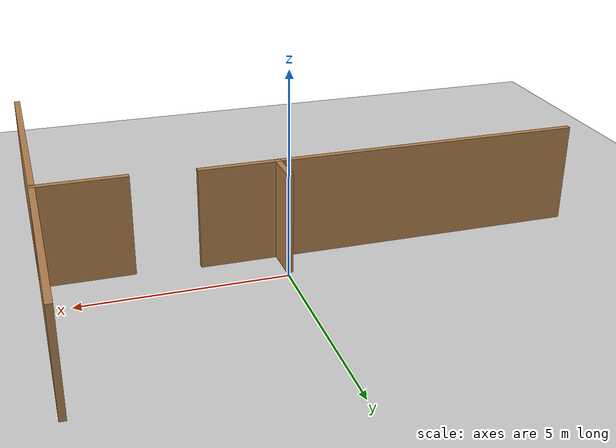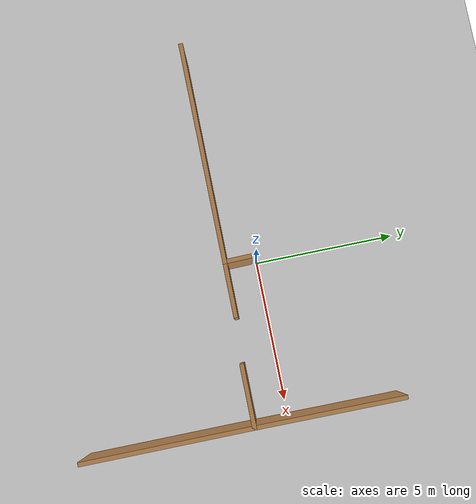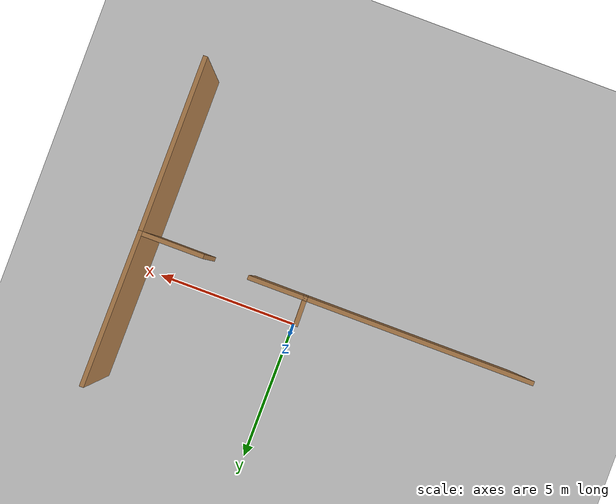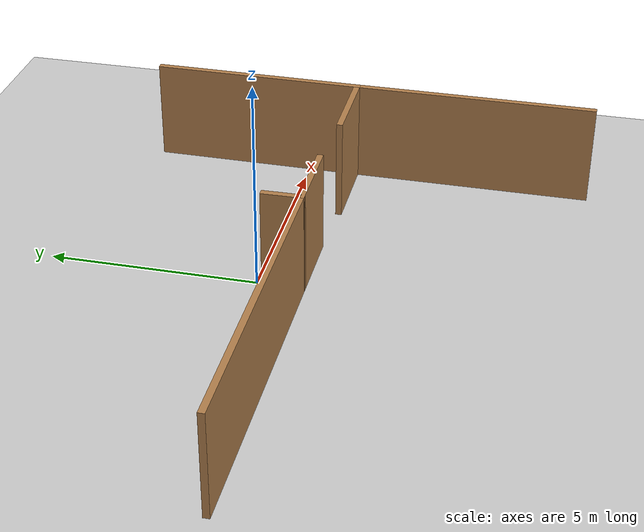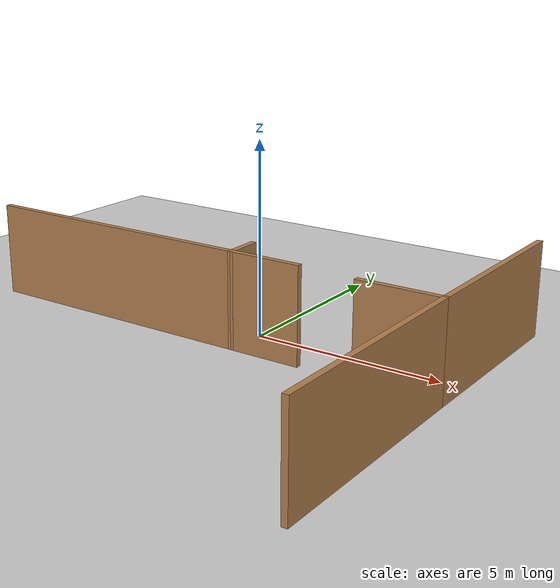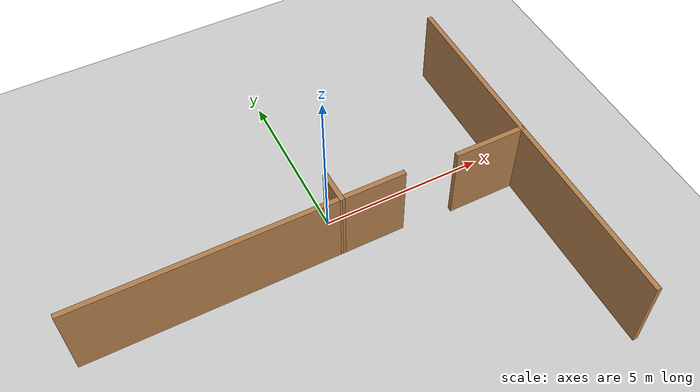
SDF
<sdf version="1.6">
 <world name="default">
  <light name="sun" type="directional">
   <pose>0 0 10 0 -0 0</pose>
   <diffuse>0.8 0.8 0.8 1</diffuse>
   <specular>0.2 0.2 0.2 1</specular>
   <attenuation>
    <range>1000</range>
    <constant>0.9</constant>
    <linear>0.01</linear>
    <quadratic>0.001</quadratic>
   </attenuation>
   <direction>-0.5 0.1 -0.9</direction>
  </light>
  <model name="ground_plane">
   <static>1</static>
   <link name="link">
    <collision name="collision">
     <geometry><plane><normal>0 0 1</normal><size>100 100</size></plane></geometry>
     <surface>
      <contact><collide_bitmask>65535</collide_bitmask></contact>
      <friction><ode><mu>100</mu><mu2>50</mu2></ode></friction>
     </surface>
    </collision>
    <visual name="visual">
     <cast_shadows>0</cast_shadows>
     <geometry><plane><normal>0 0 1</normal><size>100 100</size></plane></geometry>
     <material>
      <script><uri>file://media/materials/scripts/gazebo.material</uri><name>Gazebo/Grey</name></script>
     </material>
    </visual>
   </link>
  </model>
  <gravity>0 0 -9.8</gravity>
  <magnetic_field>6e-06 2.3e-05 -4.2e-05</magnetic_field>
  <atmosphere type="adiabatic"/>
  <physics name="default_physics" default="0" type="ode">
   <max_step_size>0.001</max_step_size>
   <real_time_factor>1</real_time_factor>
   <real_time_update_rate>1000</real_time_update_rate>
  </physics>
  <scene><ambient>0.4 0.4 0.4 1</ambient><background>0.7 0.7 0.7 1</background><shadows>1</shadows></scene>
  <spherical_coordinates>
   <surface_model>EARTH_WGS84</surface_model>
   <latitude_deg>0</latitude_deg>
   <longitude_deg>0</longitude_deg>
   <elevation>0</elevation>
   <heading_deg>0</heading_deg>
  </spherical_coordinates>
  <model name="simple_wall">
   <pose>-1.05078 -1.56971 0 0 -0 0</pose>
   <link name="Wall_0">
    <collision name="Wall_0_Collision">
     <geometry><box><size>1.99965 0.15 2.5</size></box></geometry>
     <pose>0 0 1.25 0 -0 0</pose>
    </collision>
    <visual name="Wall_0_Visual">
     <pose>0 0 1.25 0 -0 0</pose>
     <geometry><box><size>1.99965 0.15 2.5</size></box></geometry>
     <material>
      <script><uri>file://media/materials/scripts/gazebo.material</uri><name>Gazebo/Wood</name></script>
      <ambient>1 1 1 1</ambient>
     </material>
     <meta><layer>0</layer></meta>
    </visual>
    <pose>1.91578 0.496712 0 0 -0 0</pose>
   </link>
   <link name="Wall_10">
    <collision name="Wall_10_Collision">
     <geometry><box><size>5.26541 0.15 2.5</size></box></geometry>
     <pose>0 0 1.25 0 -0 0</pose>
    </collision>
    <visual name="Wall_10_Visual">
     <pose>0 0 1.25 0 -0 0</pose>
     <geometry><box><size>5.26541 0.15 2.5</size></box></geometry>
     <material>
      <script><uri>file://media/materials/scripts/gazebo.material</uri><name>Gazebo/Wood</name></script>
      <ambient>1 1 1 1</ambient>
     </material>
     <meta><layer>0</layer></meta>
    </visual>
    <pose>6.60878 2.93221 0 0 -0 1.56493</pose>
   </link>
   <link name="Wall_2">
    <collision name="Wall_2_Collision">
     <geometry><box><size>2.22 0.15 2.5</size></box></geometry>
     <pose>0 0 1.25 0 -0 0</pose>
    </collision>
    <visual name="Wall_2_Visual">
     <pose>0 0 1.25 0 -0 0</pose>
     <geometry><box><size>2.22 0.15 2.5</size></box></geometry>
     <material>
      <script><uri>file://media/materials/scripts/gazebo.material</uri><name>Gazebo/Wood</name></script>
      <ambient>1 1 1 1</ambient>
     </material>
     <meta><layer>0</layer></meta>
    </visual>
    <pose>5.55878 0.374712 0 0 -0 0</pose>
   </link>
   <link name="Wall_3">
    <collision name="Wall_3_Collision">
     <geometry><box><size>6.01505 0.15 2.5</size></box></geometry>
     <pose>0 0 1.25 0 -0 0</pose>
    </collision>
    <visual name="Wall_3_Visual">
     <pose>0 0 1.25 0 -0 0</pose>
     <geometry><box><size>6.01505 0.15 2.5</size></box></geometry>
     <material>
      <script><uri>file://media/materials/scripts/gazebo.material</uri><name>Gazebo/Wood</name></script>
      <ambient>1 1 1 1</ambient>
     </material>
     <meta><layer>0</layer></meta>
    </visual>
    <pose>6.59378 -2.55779 0 0 -0 -1.5708</pose>
   </link>
   <link name="Wall_5">
    <collision name="Wall_5_Collision">
     <geometry><box><size>7.765 0.15 2.5</size></box></geometry>
     <pose>0 0 1.25 0 -0 0</pose>
    </collision>
    <visual name="Wall_5_Visual">
     <pose>0 0 1.25 0 -0 0</pose>
     <geometry><box><size>7.765 0.15 2.5</size></box></geometry>
     <material>
      <script><uri>file://media/materials/scripts/gazebo.material</uri><name>Gazebo/Wood</name></script>
      <ambient>1 1 1 1</ambient>
     </material>
     <meta><layer>0</layer></meta>
    </visual>
    <pose>-2.81672 0.496712 0 0 -0 3.14159</pose>
   </link>
   <link name="Wall_7">
    <collision name="Wall_7_Collision">
     <geometry><box><size>1 0.15 2.5</size></box></geometry>
     <pose>0 0 1.25 0 -0 0</pose>
    </collision>
    <visual name="Wall_7_Visual">
     <pose>0 0 1.25 0 -0 0</pose>
     <geometry><box><size>1 0.15 2.5</size></box></geometry>
     <material>
      <script><uri>file://media/materials/scripts/gazebo.material</uri><name>Gazebo/Wood</name></script>
      <ambient>1 1 1 1</ambient>
     </material>
     <meta><layer>0</layer></meta>
    </visual>
    <pose>0.98328 0.921712 0 0 -0 1.58844</pose>
   </link>
   <static>1</static>
  </model>
 </world>
</sdf>
